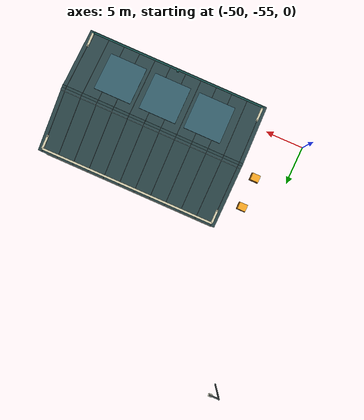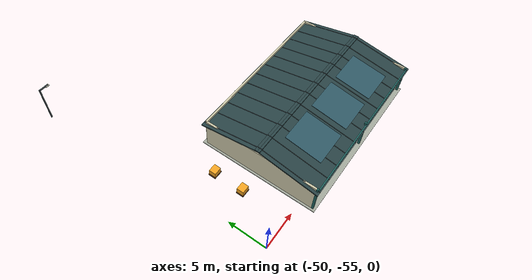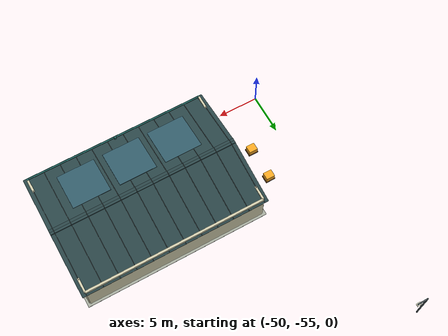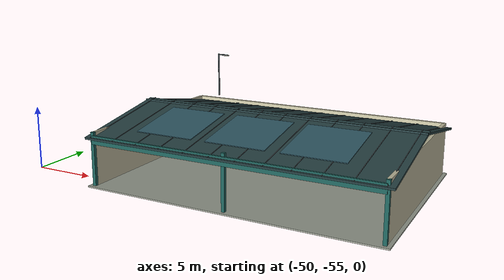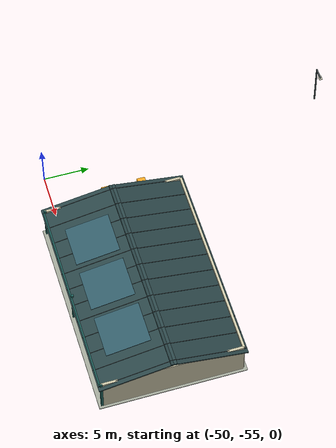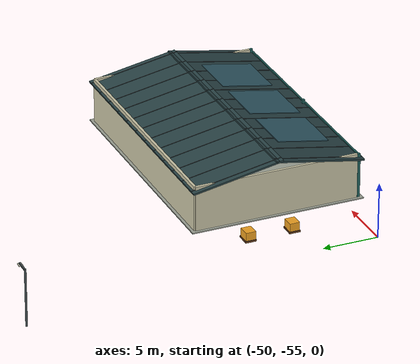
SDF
<sdf version="1.9">
 <world name="fleetscope_estate">
  <model name="maintenance_depot">
   <static>true</static>
   <pose>-32 -49 0 0 0 0</pose>
   <link name="structure">
    <visual name="visual_0">
     <pose>0 0 0.05 0 0 0</pose>
     <geometry><box><size>22.8 15.8 0.1</size></box></geometry>
     <material>
      <ambient>0.63 0.65 0.6 1</ambient>
      <diffuse>0.63 0.65 0.6 1</diffuse>
      <specular>.08 .08 .08 1</specular>
     </material>
     <cast_shadows>false</cast_shadows>
    </visual>
    <collision name="collision_0">
     <pose>0 0 0.05 0 0 0</pose>
     <geometry><box><size>22.8 15.8 0.1</size></box></geometry>
    </collision>
    <visual name="visual_1">
     <pose>0 7.5 2.1 0 0 0</pose>
     <geometry><box><size>22 0.25 4.2</size></box></geometry>
     <material>
      <ambient>0.8 0.78 0.66 1</ambient>
      <diffuse>0.8 0.78 0.66 1</diffuse>
      <specular>.08 .08 .08 1</specular>
     </material>
    </visual>
    <collision name="collision_1">
     <pose>0 7.5 2.1 0 0 0</pose>
     <geometry><box><size>22 0.25 4.2</size></box></geometry>
    </collision>
    <visual name="visual_2">
     <pose>-11 0 2.1 0 0 0</pose>
     <geometry><box><size>0.25 15 4.2</size></box></geometry>
     <material>
      <ambient>0.8 0.78 0.66 1</ambient>
      <diffuse>0.8 0.78 0.66 1</diffuse>
      <specular>.08 .08 .08 1</specular>
     </material>
    </visual>
    <collision name="collision_2">
     <pose>-11 0 2.1 0 0 0</pose>
     <geometry><box><size>0.25 15 4.2</size></box></geometry>
    </collision>
    <visual name="visual_3">
     <pose>11 0 2.1 0 0 0</pose>
     <geometry><box><size>0.25 15 4.2</size></box></geometry>
     <material>
      <ambient>0.8 0.78 0.66 1</ambient>
      <diffuse>0.8 0.78 0.66 1</diffuse>
      <specular>.08 .08 .08 1</specular>
     </material>
    </visual>
    <collision name="collision_3">
     <pose>11 0 2.1 0 0 0</pose>
     <geometry><box><size>0.25 15 4.2</size></box></geometry>
    </collision>
    <visual name="visual_4">
     <pose>-11 -7.5 2.1 0 0 0</pose>
     <geometry><box><size>0.26 0.26 4.2</size></box></geometry>
     <material>
      <ambient>0.12 0.38 0.36 1</ambient>
      <diffuse>0.12 0.38 0.36 1</diffuse>
      <specular>.08 .08 .08 1</specular>
     </material>
    </visual>
    <collision name="collision_4">
     <pose>-11 -7.5 2.1 0 0 0</pose>
     <geometry><box><size>0.26 0.26 4.2</size></box></geometry>
    </collision>
    <visual name="visual_5">
     <pose>0 -7.5 2.1 0 0 0</pose>
     <geometry><box><size>0.26 0.26 4.2</size></box></geometry>
     <material>
      <ambient>0.12 0.38 0.36 1</ambient>
      <diffuse>0.12 0.38 0.36 1</diffuse>
      <specular>.08 .08 .08 1</specular>
     </material>
    </visual>
    <collision name="collision_5">
     <pose>0 -7.5 2.1 0 0 0</pose>
     <geometry><box><size>0.26 0.26 4.2</size></box></geometry>
    </collision>
    <visual name="visual_6">
     <pose>11 -7.5 2.1 0 0 0</pose>
     <geometry><box><size>0.26 0.26 4.2</size></box></geometry>
     <material>
      <ambient>0.12 0.38 0.36 1</ambient>
      <diffuse>0.12 0.38 0.36 1</diffuse>
      <specular>.08 .08 .08 1</specular>
     </material>
    </visual>
    <collision name="collision_6">
     <pose>11 -7.5 2.1 0 0 0</pose>
     <geometry><box><size>0.26 0.26 4.2</size></box></geometry>
    </collision>
    <visual name="visual_7">
     <pose>0 -3.75 4.48 0.18 0 0</pose>
     <geometry><box><size>23 8.3 0.16</size></box></geometry>
     <material>
      <ambient>0.16 0.26 0.27 1</ambient>
      <diffuse>0.16 0.26 0.27 1</diffuse>
      <specular>.08 .08 .08 1</specular>
     </material>
    </visual>
    <collision name="collision_7">
     <pose>0 -3.75 4.48 0.18 0 0</pose>
     <geometry><box><size>23 8.3 0.16</size></box></geometry>
    </collision>
    <visual name="visual_8">
     <pose>0 3.75 4.48 -0.18 0 0</pose>
     <geometry><box><size>23 8.3 0.16</size></box></geometry>
     <material>
      <ambient>0.16 0.26 0.27 1</ambient>
      <diffuse>0.16 0.26 0.27 1</diffuse>
      <specular>.08 .08 .08 1</specular>
     </material>
    </visual>
    <collision name="collision_8">
     <pose>0 3.75 4.48 -0.18 0 0</pose>
     <geometry><box><size>23 8.3 0.16</size></box></geometry>
    </collision>
    <visual name="visual_9">
     <pose>-11 -3.75 4.58 0.18 0 0</pose>
     <geometry><box><size>0.045 8.3 0.05</size></box></geometry>
     <material>
      <ambient>0.25 0.29 0.3 1</ambient>
      <diffuse>0.25 0.29 0.3 1</diffuse>
      <specular>.08 .08 .08 1</specular>
     </material>
     <cast_shadows>false</cast_shadows>
    </visual>
    <visual name="visual_10">
     <pose>-11 3.75 4.58 -0.18 0 0</pose>
     <geometry><box><size>0.045 8.3 0.05</size></box></geometry>
     <material>
      <ambient>0.25 0.29 0.3 1</ambient>
      <diffuse>0.25 0.29 0.3 1</diffuse>
      <specular>.08 .08 .08 1</specular>
     </material>
     <cast_shadows>false</cast_shadows>
    </visual>
    <visual name="visual_11">
     <pose>-9 -3.75 4.58 0.18 0 0</pose>
     <geometry><box><size>0.045 8.3 0.05</size></box></geometry>
     <material>
      <ambient>0.25 0.29 0.3 1</ambient>
      <diffuse>0.25 0.29 0.3 1</diffuse>
      <specular>.08 .08 .08 1</specular>
     </material>
     <cast_shadows>false</cast_shadows>
    </visual>
    <visual name="visual_12">
     <pose>-9 3.75 4.58 -0.18 0 0</pose>
     <geometry><box><size>0.045 8.3 0.05</size></box></geometry>
     <material>
      <ambient>0.25 0.29 0.3 1</ambient>
      <diffuse>0.25 0.29 0.3 1</diffuse>
      <specular>.08 .08 .08 1</specular>
     </material>
     <cast_shadows>false</cast_shadows>
    </visual>
    <visual name="visual_13">
     <pose>-7 -3.75 4.58 0.18 0 0</pose>
     <geometry><box><size>0.045 8.3 0.05</size></box></geometry>
     <material>
      <ambient>0.25 0.29 0.3 1</ambient>
      <diffuse>0.25 0.29 0.3 1</diffuse>
      <specular>.08 .08 .08 1</specular>
     </material>
     <cast_shadows>false</cast_shadows>
    </visual>
    <visual name="visual_14">
     <pose>-7 3.75 4.58 -0.18 0 0</pose>
     <geometry><box><size>0.045 8.3 0.05</size></box></geometry>
     <material>
      <ambient>0.25 0.29 0.3 1</ambient>
      <diffuse>0.25 0.29 0.3 1</diffuse>
      <specular>.08 .08 .08 1</specular>
     </material>
     <cast_shadows>false</cast_shadows>
    </visual>
    <visual name="visual_15">
     <pose>-5 -3.75 4.58 0.18 0 0</pose>
     <geometry><box><size>0.045 8.3 0.05</size></box></geometry>
     <material>
      <ambient>0.25 0.29 0.3 1</ambient>
      <diffuse>0.25 0.29 0.3 1</diffuse>
      <specular>.08 .08 .08 1</specular>
     </material>
     <cast_shadows>false</cast_shadows>
    </visual>
    <visual name="visual_16">
     <pose>-5 3.75 4.58 -0.18 0 0</pose>
     <geometry><box><size>0.045 8.3 0.05</size></box></geometry>
     <material>
      <ambient>0.25 0.29 0.3 1</ambient>
      <diffuse>0.25 0.29 0.3 1</diffuse>
      <specular>.08 .08 .08 1</specular>
     </material>
     <cast_shadows>false</cast_shadows>
    </visual>
    <visual name="visual_17">
     <pose>-3 -3.75 4.58 0.18 0 0</pose>
     <geometry><box><size>0.045 8.3 0.05</size></box></geometry>
     <material>
      <ambient>0.25 0.29 0.3 1</ambient>
      <diffuse>0.25 0.29 0.3 1</diffuse>
      <specular>.08 .08 .08 1</specular>
     </material>
     <cast_shadows>false</cast_shadows>
    </visual>
    <visual name="visual_18">
     <pose>-3 3.75 4.58 -0.18 0 0</pose>
     <geometry><box><size>0.045 8.3 0.05</size></box></geometry>
     <material>
      <ambient>0.25 0.29 0.3 1</ambient>
      <diffuse>0.25 0.29 0.3 1</diffuse>
      <specular>.08 .08 .08 1</specular>
     </material>
     <cast_shadows>false</cast_shadows>
    </visual>
    <visual name="visual_19">
     <pose>-1 -3.75 4.58 0.18 0 0</pose>
     <geometry><box><size>0.045 8.3 0.05</size></box></geometry>
     <material>
      <ambient>0.25 0.29 0.3 1</ambient>
      <diffuse>0.25 0.29 0.3 1</diffuse>
      <specular>.08 .08 .08 1</specular>
     </material>
     <cast_shadows>false</cast_shadows>
    </visual>
    <visual name="visual_20">
     <pose>-1 3.75 4.58 -0.18 0 0</pose>
     <geometry><box><size>0.045 8.3 0.05</size></box></geometry>
     <material>
      <ambient>0.25 0.29 0.3 1</ambient>
      <diffuse>0.25 0.29 0.3 1</diffuse>
      <specular>.08 .08 .08 1</specular>
     </material>
     <cast_shadows>false</cast_shadows>
    </visual>
    <visual name="visual_21">
     <pose>1 -3.75 4.58 0.18 0 0</pose>
     <geometry><box><size>0.045 8.3 0.05</size></box></geometry>
     <material>
      <ambient>0.25 0.29 0.3 1</ambient>
      <diffuse>0.25 0.29 0.3 1</diffuse>
      <specular>.08 .08 .08 1</specular>
     </material>
     <cast_shadows>false</cast_shadows>
    </visual>
    <visual name="visual_22">
     <pose>1 3.75 4.58 -0.18 0 0</pose>
     <geometry><box><size>0.045 8.3 0.05</size></box></geometry>
     <material>
      <ambient>0.25 0.29 0.3 1</ambient>
      <diffuse>0.25 0.29 0.3 1</diffuse>
      <specular>.08 .08 .08 1</specular>
     </material>
     <cast_shadows>false</cast_shadows>
    </visual>
    <visual name="visual_23">
     <pose>3 -3.75 4.58 0.18 0 0</pose>
     <geometry><box><size>0.045 8.3 0.05</size></box></geometry>
     <material>
      <ambient>0.25 0.29 0.3 1</ambient>
      <diffuse>0.25 0.29 0.3 1</diffuse>
      <specular>.08 .08 .08 1</specular>
     </material>
     <cast_shadows>false</cast_shadows>
    </visual>
    <visual name="visual_24">
     <pose>3 3.75 4.58 -0.18 0 0</pose>
     <geometry><box><size>0.045 8.3 0.05</size></box></geometry>
     <material>
      <ambient>0.25 0.29 0.3 1</ambient>
      <diffuse>0.25 0.29 0.3 1</diffuse>
      <specular>.08 .08 .08 1</specular>
     </material>
     <cast_shadows>false</cast_shadows>
    </visual>
    <visual name="visual_25">
     <pose>5 -3.75 4.58 0.18 0 0</pose>
     <geometry><box><size>0.045 8.3 0.05</size></box></geometry>
     <material>
      <ambient>0.25 0.29 0.3 1</ambient>
      <diffuse>0.25 0.29 0.3 1</diffuse>
      <specular>.08 .08 .08 1</specular>
     </material>
     <cast_shadows>false</cast_shadows>
    </visual>
    <visual name="visual_26">
     <pose>5 3.75 4.58 -0.18 0 0</pose>
     <geometry><box><size>0.045 8.3 0.05</size></box></geometry>
     <material>
      <ambient>0.25 0.29 0.3 1</ambient>
      <diffuse>0.25 0.29 0.3 1</diffuse>
      <specular>.08 .08 .08 1</specular>
     </material>
     <cast_shadows>false</cast_shadows>
    </visual>
    <visual name="visual_27">
     <pose>7 -3.75 4.58 0.18 0 0</pose>
     <geometry><box><size>0.045 8.3 0.05</size></box></geometry>
     <material>
      <ambient>0.25 0.29 0.3 1</ambient>
      <diffuse>0.25 0.29 0.3 1</diffuse>
      <specular>.08 .08 .08 1</specular>
     </material>
     <cast_shadows>false</cast_shadows>
    </visual>
    <visual name="visual_28">
     <pose>7 3.75 4.58 -0.18 0 0</pose>
     <geometry><box><size>0.045 8.3 0.05</size></box></geometry>
     <material>
      <ambient>0.25 0.29 0.3 1</ambient>
      <diffuse>0.25 0.29 0.3 1</diffuse>
      <specular>.08 .08 .08 1</specular>
     </material>
     <cast_shadows>false</cast_shadows>
    </visual>
    <visual name="visual_29">
     <pose>9 -3.75 4.58 0.18 0 0</pose>
     <geometry><box><size>0.045 8.3 0.05</size></box></geometry>
     <material>
      <ambient>0.25 0.29 0.3 1</ambient>
      <diffuse>0.25 0.29 0.3 1</diffuse>
      <specular>.08 .08 .08 1</specular>
     </material>
     <cast_shadows>false</cast_shadows>
    </visual>
    <visual name="visual_30">
     <pose>9 3.75 4.58 -0.18 0 0</pose>
     <geometry><box><size>0.045 8.3 0.05</size></box></geometry>
     <material>
      <ambient>0.25 0.29 0.3 1</ambient>
      <diffuse>0.25 0.29 0.3 1</diffuse>
      <specular>.08 .08 .08 1</specular>
     </material>
     <cast_shadows>false</cast_shadows>
    </visual>
    <visual name="visual_31">
     <pose>11 -3.75 4.58 0.18 0 0</pose>
     <geometry><box><size>0.045 8.3 0.05</size></box></geometry>
     <material>
      <ambient>0.25 0.29 0.3 1</ambient>
      <diffuse>0.25 0.29 0.3 1</diffuse>
      <specular>.08 .08 .08 1</specular>
     </material>
     <cast_shadows>false</cast_shadows>
    </visual>
    <visual name="visual_32">
     <pose>11 3.75 4.58 -0.18 0 0</pose>
     <geometry><box><size>0.045 8.3 0.05</size></box></geometry>
     <material>
      <ambient>0.25 0.29 0.3 1</ambient>
      <diffuse>0.25 0.29 0.3 1</diffuse>
      <specular>.08 .08 .08 1</specular>
     </material>
     <cast_shadows>false</cast_shadows>
    </visual>
    <visual name="visual_33">
     <pose>0 -7.64 3.65 0 0 0</pose>
     <geometry><box><size>22 0.16 0.65</size></box></geometry>
     <material>
      <ambient>0.12 0.38 0.36 1</ambient>
      <diffuse>0.12 0.38 0.36 1</diffuse>
      <specular>.08 .08 .08 1</specular>
     </material>
    </visual>
    <visual name="visual_34">
     <pose>-5.72 -3.75 4.72 0.18 0 0</pose>
     <geometry><box><size>4.62 4.8 0.06</size></box></geometry>
     <material>
      <ambient>0.19 0.35 0.4 1</ambient>
      <diffuse>0.19 0.35 0.4 1</diffuse>
      <specular>.08 .08 .08 1</specular>
     </material>
     <cast_shadows>false</cast_shadows>
    </visual>
    <visual name="visual_35">
     <pose>0 -3.75 4.72 0.18 0 0</pose>
     <geometry><box><size>4.62 4.8 0.06</size></box></geometry>
     <material>
      <ambient>0.19 0.35 0.4 1</ambient>
      <diffuse>0.19 0.35 0.4 1</diffuse>
      <specular>.08 .08 .08 1</specular>
     </material>
     <cast_shadows>false</cast_shadows>
    </visual>
    <visual name="visual_36">
     <pose>5.72 -3.75 4.72 0.18 0 0</pose>
     <geometry><box><size>4.62 4.8 0.06</size></box></geometry>
     <material>
      <ambient>0.19 0.35 0.4 1</ambient>
      <diffuse>0.19 0.35 0.4 1</diffuse>
      <specular>.08 .08 .08 1</specular>
     </material>
     <cast_shadows>false</cast_shadows>
    </visual>
   </link>
  </model>
  <model name="pallet_-46_-45">
   <static>true</static>
   <pose>-46 -45 0 0 0 0</pose>
   <link name="structure">
    <visual name="visual_0">
     <pose>0 0 0.08 0 0 0</pose>
     <geometry><box><size>1.2 1 0.16</size></box></geometry>
     <material>
      <ambient>0.4 0.24 0.11 1</ambient>
      <diffuse>0.4 0.24 0.11 1</diffuse>
      <specular>.08 .08 .08 1</specular>
     </material>
    </visual>
    <collision name="collision_0">
     <pose>0 0 0.08 0 0 0</pose>
     <geometry><box><size>1.2 1 0.16</size></box></geometry>
    </collision>
    <visual name="visual_1">
     <pose>0 0 0.53 0 0 0</pose>
     <geometry><box><size>1.05 0.9 0.74</size></box></geometry>
     <material>
      <ambient>0.95 0.64 0.13 1</ambient>
      <diffuse>0.95 0.64 0.13 1</diffuse>
      <specular>.08 .08 .08 1</specular>
     </material>
    </visual>
    <collision name="collision_1">
     <pose>0 0 0.53 0 0 0</pose>
     <geometry><box><size>1.05 0.9 0.74</size></box></geometry>
    </collision>
   </link>
  </model>
  <model name="pallet_-46_-49">
   <static>true</static>
   <pose>-46 -49 0 0 0 0</pose>
   <link name="structure">
    <visual name="visual_0">
     <pose>0 0 0.08 0 0 0</pose>
     <geometry><box><size>1.2 1 0.16</size></box></geometry>
     <material>
      <ambient>0.4 0.24 0.11 1</ambient>
      <diffuse>0.4 0.24 0.11 1</diffuse>
      <specular>.08 .08 .08 1</specular>
     </material>
    </visual>
    <collision name="collision_0">
     <pose>0 0 0.08 0 0 0</pose>
     <geometry><box><size>1.2 1 0.16</size></box></geometry>
    </collision>
    <visual name="visual_1">
     <pose>0 0 0.53 0 0 0</pose>
     <geometry><box><size>1.05 0.9 0.74</size></box></geometry>
     <material>
      <ambient>0.95 0.64 0.13 1</ambient>
      <diffuse>0.95 0.64 0.13 1</diffuse>
      <specular>.08 .08 .08 1</specular>
     </material>
    </visual>
    <collision name="collision_1">
     <pose>0 0 0.53 0 0 0</pose>
     <geometry><box><size>1.05 0.9 0.74</size></box></geometry>
    </collision>
   </link>
  </model>
  <model name="road_light_-52">
   <static>true</static>
   <pose>-52 -23 0 0 0 0</pose>
   <link name="structure">
    <visual name="visual_0">
     <pose>0 0 2.6 0 0 0</pose>
     <geometry><cylinder><radius>0.09</radius><length>5.2</length></cylinder></geometry>
     <material>
      <ambient>0.25 0.29 0.3 1</ambient>
      <diffuse>0.25 0.29 0.3 1</diffuse>
      <specular>.08 .08 .08 1</specular>
     </material>
    </visual>
    <collision name="collision_0">
     <pose>0 0 2.6 0 0 0</pose>
     <geometry><cylinder><radius>0.09</radius><length>5.2</length></cylinder></geometry>
    </collision>
    <visual name="visual_1">
     <pose>0.6 0 5.1 0 0 0</pose>
     <geometry><box><size>1.3 0.15 0.12</size></box></geometry>
     <material>
      <ambient>0.25 0.29 0.3 1</ambient>
      <diffuse>0.25 0.29 0.3 1</diffuse>
      <specular>.08 .08 .08 1</specular>
     </material>
    </visual>
    <collision name="collision_1">
     <pose>0.6 0 5.1 0 0 0</pose>
     <geometry><box><size>1.3 0.15 0.12</size></box></geometry>
    </collision>
    <visual name="visual_2">
     <pose>1.1 0 5.03 0 0 0</pose>
     <geometry><box><size>0.5 0.35 0.08</size></box></geometry>
     <material>
      <ambient>0.9 0.9 0.81 1</ambient>
      <diffuse>0.9 0.9 0.81 1</diffuse>
      <specular>.08 .08 .08 1</specular>
     </material>
     <cast_shadows>false</cast_shadows>
    </visual>
   </link>
  </model>
 </world>
</sdf>
